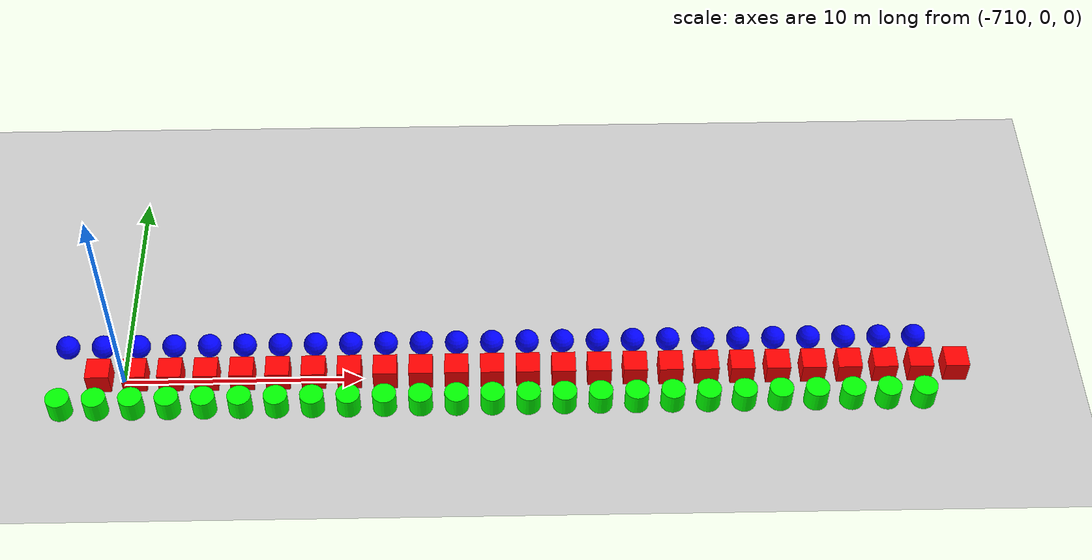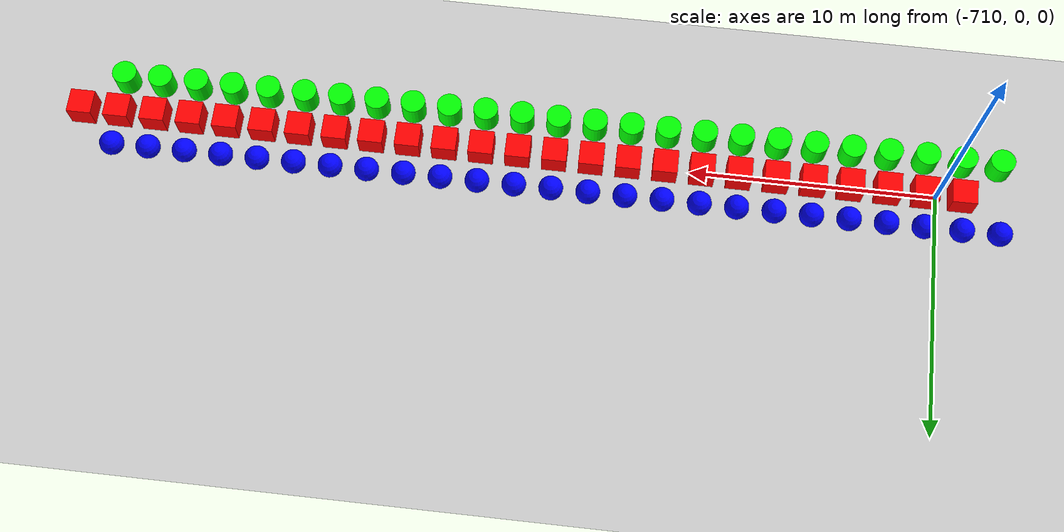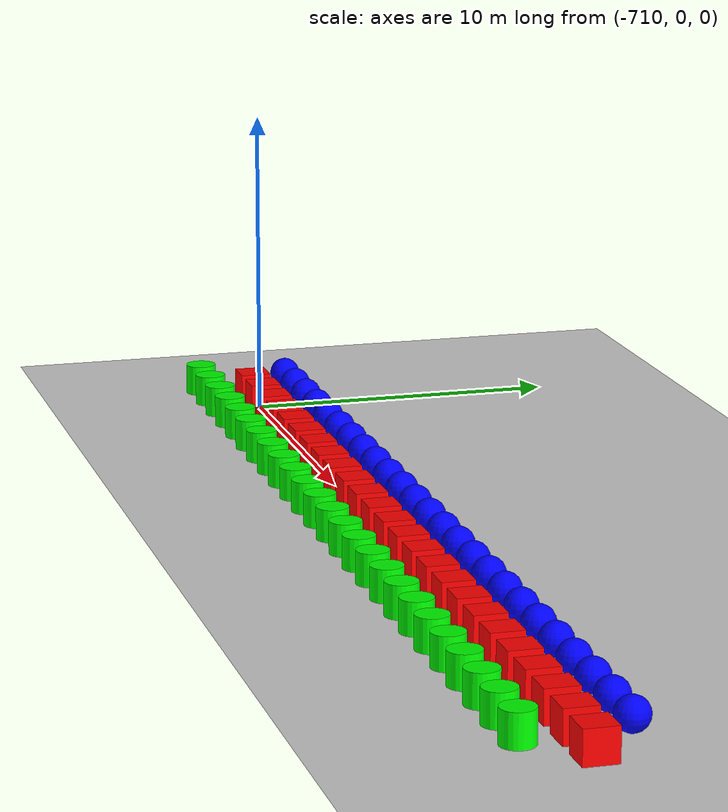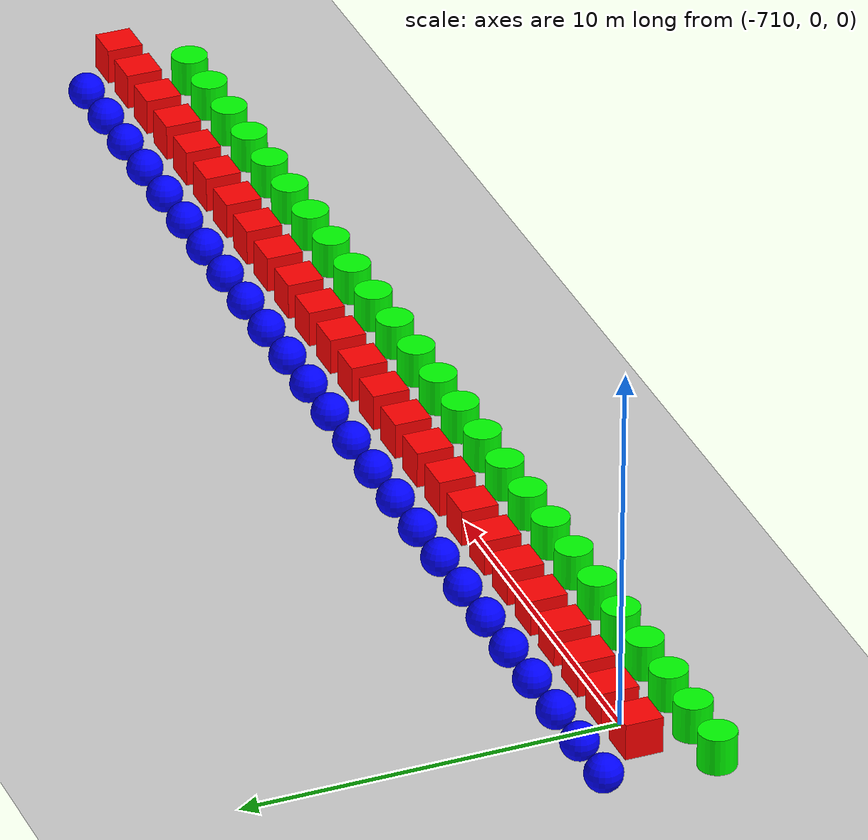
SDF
<sdf version="1.6">
 <world name="shapes">
  <model name="ground_plane">
   <static>true</static>
   <link name="link">
    <collision name="collision">
     <geometry><plane><normal>0 0 1</normal><size>100 100</size></plane></geometry>
    </collision>
    <visual name="visual">
     <geometry><plane><normal>0 0 1</normal><size>100 100</size></plane></geometry>
     <material>
      <ambient>0.8 0.8 0.8 1</ambient>
      <diffuse>0.8 0.8 0.8 1</diffuse>
      <specular>0.8 0.8 0.8 1</specular>
     </material>
    </visual>
   </link>
  </model>
  <model name="cylinder_25">
   <pose>-712.5 -1.5 0.5 0 0 0</pose>
   <link name="cylinder_link">
    <inertial>
     <inertia><ixx>2</ixx><ixy>0</ixy><ixz>0</ixz><iyy>2</iyy><iyz>0</iyz><izz>2</izz></inertia>
     <mass>2.0</mass>
    </inertial>
    <collision name="cylinder_collision">
     <geometry><cylinder><radius>0.5</radius><length>1.0</length></cylinder></geometry>
    </collision>
    <visual name="cylinder_visual">
     <geometry><cylinder><radius>0.5</radius><length>1.0</length></cylinder></geometry>
     <material><ambient>0 1 0 1</ambient><diffuse>0 1 0 1</diffuse><specular>0 1 0 1</specular></material>
    </visual>
   </link>
  </model>
  <model name="sphere_25">
   <pose>-712.5 1.5 0.5 0 0 0</pose>
   <link name="sphere_link">
    <inertial>
     <inertia><ixx>3</ixx><ixy>0</ixy><ixz>0</ixz><iyy>3</iyy><iyz>0</iyz><izz>3</izz></inertia>
     <mass>3.0</mass>
    </inertial>
    <collision name="sphere_collision"><geometry><sphere><radius>0.5</radius></sphere></geometry></collision>
    <visual name="sphere_visual">
     <geometry><sphere><radius>0.5</radius></sphere></geometry>
     <material><ambient>0 0 1 1</ambient><diffuse>0 0 1 1</diffuse><specular>0 0 1 1</specular></material>
    </visual>
   </link>
  </model>
  <model name="box_26">
   <pose>-711.0 0 0.5 0 0 0</pose>
   <link name="box_link">
    <inertial>
     <inertia><ixx>1</ixx><ixy>0</ixy><ixz>0</ixz><iyy>1</iyy><iyz>0</iyz><izz>1</izz></inertia>
     <mass>1.0</mass>
    </inertial>
    <collision name="box_collision"><geometry><box><size>1 1 1</size></box></geometry></collision>
    <visual name="box_visual">
     <geometry><box><size>1 1 1</size></box></geometry>
     <material><ambient>1 0 0 1</ambient><diffuse>1 0 0 1</diffuse><specular>1 0 0 1</specular></material>
    </visual>
   </link>
  </model>
  <model name="cylinder_26">
   <pose>-711.0 -1.5 0.5 0 0 0</pose>
   <link name="cylinder_link">
    <inertial>
     <inertia><ixx>2</ixx><ixy>0</ixy><ixz>0</ixz><iyy>2</iyy><iyz>0</iyz><izz>2</izz></inertia>
     <mass>2.0</mass>
    </inertial>
    <collision name="cylinder_collision">
     <geometry><cylinder><radius>0.5</radius><length>1.0</length></cylinder></geometry>
    </collision>
    <visual name="cylinder_visual">
     <geometry><cylinder><radius>0.5</radius><length>1.0</length></cylinder></geometry>
     <material><ambient>0 1 0 1</ambient><diffuse>0 1 0 1</diffuse><specular>0 1 0 1</specular></material>
    </visual>
   </link>
  </model>
  <model name="sphere_26">
   <pose>-711.0 1.5 0.5 0 0 0</pose>
   <link name="sphere_link">
    <inertial>
     <inertia><ixx>3</ixx><ixy>0</ixy><ixz>0</ixz><iyy>3</iyy><iyz>0</iyz><izz>3</izz></inertia>
     <mass>3.0</mass>
    </inertial>
    <collision name="sphere_collision"><geometry><sphere><radius>0.5</radius></sphere></geometry></collision>
    <visual name="sphere_visual">
     <geometry><sphere><radius>0.5</radius></sphere></geometry>
     <material><ambient>0 0 1 1</ambient><diffuse>0 0 1 1</diffuse><specular>0 0 1 1</specular></material>
    </visual>
   </link>
  </model>
  <model name="box_27">
   <pose>-709.5 0 0.5 0 0 0</pose>
   <link name="box_link">
    <inertial>
     <inertia><ixx>1</ixx><ixy>0</ixy><ixz>0</ixz><iyy>1</iyy><iyz>0</iyz><izz>1</izz></inertia>
     <mass>1.0</mass>
    </inertial>
    <collision name="box_collision"><geometry><box><size>1 1 1</size></box></geometry></collision>
    <visual name="box_visual">
     <geometry><box><size>1 1 1</size></box></geometry>
     <material><ambient>1 0 0 1</ambient><diffuse>1 0 0 1</diffuse><specular>1 0 0 1</specular></material>
    </visual>
   </link>
  </model>
  <model name="cylinder_27">
   <pose>-709.5 -1.5 0.5 0 0 0</pose>
   <link name="cylinder_link">
    <inertial>
     <inertia><ixx>2</ixx><ixy>0</ixy><ixz>0</ixz><iyy>2</iyy><iyz>0</iyz><izz>2</izz></inertia>
     <mass>2.0</mass>
    </inertial>
    <collision name="cylinder_collision">
     <geometry><cylinder><radius>0.5</radius><length>1.0</length></cylinder></geometry>
    </collision>
    <visual name="cylinder_visual">
     <geometry><cylinder><radius>0.5</radius><length>1.0</length></cylinder></geometry>
     <material><ambient>0 1 0 1</ambient><diffuse>0 1 0 1</diffuse><specular>0 1 0 1</specular></material>
    </visual>
   </link>
  </model>
  <model name="sphere_27">
   <pose>-709.5 1.5 0.5 0 0 0</pose>
   <link name="sphere_link">
    <inertial>
     <inertia><ixx>3</ixx><ixy>0</ixy><ixz>0</ixz><iyy>3</iyy><iyz>0</iyz><izz>3</izz></inertia>
     <mass>3.0</mass>
    </inertial>
    <collision name="sphere_collision"><geometry><sphere><radius>0.5</radius></sphere></geometry></collision>
    <visual name="sphere_visual">
     <geometry><sphere><radius>0.5</radius></sphere></geometry>
     <material><ambient>0 0 1 1</ambient><diffuse>0 0 1 1</diffuse><specular>0 0 1 1</specular></material>
    </visual>
   </link>
  </model>
  <model name="box_28">
   <pose>-708.0 0 0.5 0 0 0</pose>
   <link name="box_link">
    <inertial>
     <inertia><ixx>1</ixx><ixy>0</ixy><ixz>0</ixz><iyy>1</iyy><iyz>0</iyz><izz>1</izz></inertia>
     <mass>1.0</mass>
    </inertial>
    <collision name="box_collision"><geometry><box><size>1 1 1</size></box></geometry></collision>
    <visual name="box_visual">
     <geometry><box><size>1 1 1</size></box></geometry>
     <material><ambient>1 0 0 1</ambient><diffuse>1 0 0 1</diffuse><specular>1 0 0 1</specular></material>
    </visual>
   </link>
  </model>
  <model name="cylinder_28">
   <pose>-708.0 -1.5 0.5 0 0 0</pose>
   <link name="cylinder_link">
    <inertial>
     <inertia><ixx>2</ixx><ixy>0</ixy><ixz>0</ixz><iyy>2</iyy><iyz>0</iyz><izz>2</izz></inertia>
     <mass>2.0</mass>
    </inertial>
    <collision name="cylinder_collision">
     <geometry><cylinder><radius>0.5</radius><length>1.0</length></cylinder></geometry>
    </collision>
    <visual name="cylinder_visual">
     <geometry><cylinder><radius>0.5</radius><length>1.0</length></cylinder></geometry>
     <material><ambient>0 1 0 1</ambient><diffuse>0 1 0 1</diffuse><specular>0 1 0 1</specular></material>
    </visual>
   </link>
  </model>
  <model name="sphere_28">
   <pose>-708.0 1.5 0.5 0 0 0</pose>
   <link name="sphere_link">
    <inertial>
     <inertia><ixx>3</ixx><ixy>0</ixy><ixz>0</ixz><iyy>3</iyy><iyz>0</iyz><izz>3</izz></inertia>
     <mass>3.0</mass>
    </inertial>
    <collision name="sphere_collision"><geometry><sphere><radius>0.5</radius></sphere></geometry></collision>
    <visual name="sphere_visual">
     <geometry><sphere><radius>0.5</radius></sphere></geometry>
     <material><ambient>0 0 1 1</ambient><diffuse>0 0 1 1</diffuse><specular>0 0 1 1</specular></material>
    </visual>
   </link>
  </model>
  <model name="box_29">
   <pose>-706.5 0 0.5 0 0 0</pose>
   <link name="box_link">
    <inertial>
     <inertia><ixx>1</ixx><ixy>0</ixy><ixz>0</ixz><iyy>1</iyy><iyz>0</iyz><izz>1</izz></inertia>
     <mass>1.0</mass>
    </inertial>
    <collision name="box_collision"><geometry><box><size>1 1 1</size></box></geometry></collision>
    <visual name="box_visual">
     <geometry><box><size>1 1 1</size></box></geometry>
     <material><ambient>1 0 0 1</ambient><diffuse>1 0 0 1</diffuse><specular>1 0 0 1</specular></material>
    </visual>
   </link>
  </model>
  <model name="cylinder_29">
   <pose>-706.5 -1.5 0.5 0 0 0</pose>
   <link name="cylinder_link">
    <inertial>
     <inertia><ixx>2</ixx><ixy>0</ixy><ixz>0</ixz><iyy>2</iyy><iyz>0</iyz><izz>2</izz></inertia>
     <mass>2.0</mass>
    </inertial>
    <collision name="cylinder_collision">
     <geometry><cylinder><radius>0.5</radius><length>1.0</length></cylinder></geometry>
    </collision>
    <visual name="cylinder_visual">
     <geometry><cylinder><radius>0.5</radius><length>1.0</length></cylinder></geometry>
     <material><ambient>0 1 0 1</ambient><diffuse>0 1 0 1</diffuse><specular>0 1 0 1</specular></material>
    </visual>
   </link>
  </model>
  <model name="sphere_29">
   <pose>-706.5 1.5 0.5 0 0 0</pose>
   <link name="sphere_link">
    <inertial>
     <inertia><ixx>3</ixx><ixy>0</ixy><ixz>0</ixz><iyy>3</iyy><iyz>0</iyz><izz>3</izz></inertia>
     <mass>3.0</mass>
    </inertial>
    <collision name="sphere_collision"><geometry><sphere><radius>0.5</radius></sphere></geometry></collision>
    <visual name="sphere_visual">
     <geometry><sphere><radius>0.5</radius></sphere></geometry>
     <material><ambient>0 0 1 1</ambient><diffuse>0 0 1 1</diffuse><specular>0 0 1 1</specular></material>
    </visual>
   </link>
  </model>
  <model name="box_30">
   <pose>-705.0 0 0.5 0 0 0</pose>
   <link name="box_link">
    <inertial>
     <inertia><ixx>1</ixx><ixy>0</ixy><ixz>0</ixz><iyy>1</iyy><iyz>0</iyz><izz>1</izz></inertia>
     <mass>1.0</mass>
    </inertial>
    <collision name="box_collision"><geometry><box><size>1 1 1</size></box></geometry></collision>
    <visual name="box_visual">
     <geometry><box><size>1 1 1</size></box></geometry>
     <material><ambient>1 0 0 1</ambient><diffuse>1 0 0 1</diffuse><specular>1 0 0 1</specular></material>
    </visual>
   </link>
  </model>
  <model name="cylinder_30">
   <pose>-705.0 -1.5 0.5 0 0 0</pose>
   <link name="cylinder_link">
    <inertial>
     <inertia><ixx>2</ixx><ixy>0</ixy><ixz>0</ixz><iyy>2</iyy><iyz>0</iyz><izz>2</izz></inertia>
     <mass>2.0</mass>
    </inertial>
    <collision name="cylinder_collision">
     <geometry><cylinder><radius>0.5</radius><length>1.0</length></cylinder></geometry>
    </collision>
    <visual name="cylinder_visual">
     <geometry><cylinder><radius>0.5</radius><length>1.0</length></cylinder></geometry>
     <material><ambient>0 1 0 1</ambient><diffuse>0 1 0 1</diffuse><specular>0 1 0 1</specular></material>
    </visual>
   </link>
  </model>
  <model name="sphere_30">
   <pose>-705.0 1.5 0.5 0 0 0</pose>
   <link name="sphere_link">
    <inertial>
     <inertia><ixx>3</ixx><ixy>0</ixy><ixz>0</ixz><iyy>3</iyy><iyz>0</iyz><izz>3</izz></inertia>
     <mass>3.0</mass>
    </inertial>
    <collision name="sphere_collision"><geometry><sphere><radius>0.5</radius></sphere></geometry></collision>
    <visual name="sphere_visual">
     <geometry><sphere><radius>0.5</radius></sphere></geometry>
     <material><ambient>0 0 1 1</ambient><diffuse>0 0 1 1</diffuse><specular>0 0 1 1</specular></material>
    </visual>
   </link>
  </model>
  <model name="box_31">
   <pose>-703.5 0 0.5 0 0 0</pose>
   <link name="box_link">
    <inertial>
     <inertia><ixx>1</ixx><ixy>0</ixy><ixz>0</ixz><iyy>1</iyy><iyz>0</iyz><izz>1</izz></inertia>
     <mass>1.0</mass>
    </inertial>
    <collision name="box_collision"><geometry><box><size>1 1 1</size></box></geometry></collision>
    <visual name="box_visual">
     <geometry><box><size>1 1 1</size></box></geometry>
     <material><ambient>1 0 0 1</ambient><diffuse>1 0 0 1</diffuse><specular>1 0 0 1</specular></material>
    </visual>
   </link>
  </model>
  <model name="cylinder_31">
   <pose>-703.5 -1.5 0.5 0 0 0</pose>
   <link name="cylinder_link">
    <inertial>
     <inertia><ixx>2</ixx><ixy>0</ixy><ixz>0</ixz><iyy>2</iyy><iyz>0</iyz><izz>2</izz></inertia>
     <mass>2.0</mass>
    </inertial>
    <collision name="cylinder_collision">
     <geometry><cylinder><radius>0.5</radius><length>1.0</length></cylinder></geometry>
    </collision>
    <visual name="cylinder_visual">
     <geometry><cylinder><radius>0.5</radius><length>1.0</length></cylinder></geometry>
     <material><ambient>0 1 0 1</ambient><diffuse>0 1 0 1</diffuse><specular>0 1 0 1</specular></material>
    </visual>
   </link>
  </model>
  <model name="sphere_31">
   <pose>-703.5 1.5 0.5 0 0 0</pose>
   <link name="sphere_link">
    <inertial>
     <inertia><ixx>3</ixx><ixy>0</ixy><ixz>0</ixz><iyy>3</iyy><iyz>0</iyz><izz>3</izz></inertia>
     <mass>3.0</mass>
    </inertial>
    <collision name="sphere_collision"><geometry><sphere><radius>0.5</radius></sphere></geometry></collision>
    <visual name="sphere_visual">
     <geometry><sphere><radius>0.5</radius></sphere></geometry>
     <material><ambient>0 0 1 1</ambient><diffuse>0 0 1 1</diffuse><specular>0 0 1 1</specular></material>
    </visual>
   </link>
  </model>
  <model name="box_32">
   <pose>-702.0 0 0.5 0 0 0</pose>
   <link name="box_link">
    <inertial>
     <inertia><ixx>1</ixx><ixy>0</ixy><ixz>0</ixz><iyy>1</iyy><iyz>0</iyz><izz>1</izz></inertia>
     <mass>1.0</mass>
    </inertial>
    <collision name="box_collision"><geometry><box><size>1 1 1</size></box></geometry></collision>
    <visual name="box_visual">
     <geometry><box><size>1 1 1</size></box></geometry>
     <material><ambient>1 0 0 1</ambient><diffuse>1 0 0 1</diffuse><specular>1 0 0 1</specular></material>
    </visual>
   </link>
  </model>
  <model name="cylinder_32">
   <pose>-702.0 -1.5 0.5 0 0 0</pose>
   <link name="cylinder_link">
    <inertial>
     <inertia><ixx>2</ixx><ixy>0</ixy><ixz>0</ixz><iyy>2</iyy><iyz>0</iyz><izz>2</izz></inertia>
     <mass>2.0</mass>
    </inertial>
    <collision name="cylinder_collision">
     <geometry><cylinder><radius>0.5</radius><length>1.0</length></cylinder></geometry>
    </collision>
    <visual name="cylinder_visual">
     <geometry><cylinder><radius>0.5</radius><length>1.0</length></cylinder></geometry>
     <material><ambient>0 1 0 1</ambient><diffuse>0 1 0 1</diffuse><specular>0 1 0 1</specular></material>
    </visual>
   </link>
  </model>
  <model name="sphere_32">
   <pose>-702.0 1.5 0.5 0 0 0</pose>
   <link name="sphere_link">
    <inertial>
     <inertia><ixx>3</ixx><ixy>0</ixy><ixz>0</ixz><iyy>3</iyy><iyz>0</iyz><izz>3</izz></inertia>
     <mass>3.0</mass>
    </inertial>
    <collision name="sphere_collision"><geometry><sphere><radius>0.5</radius></sphere></geometry></collision>
    <visual name="sphere_visual">
     <geometry><sphere><radius>0.5</radius></sphere></geometry>
     <material><ambient>0 0 1 1</ambient><diffuse>0 0 1 1</diffuse><specular>0 0 1 1</specular></material>
    </visual>
   </link>
  </model>
  <model name="box_33">
   <pose>-700.5 0 0.5 0 0 0</pose>
   <link name="box_link">
    <inertial>
     <inertia><ixx>1</ixx><ixy>0</ixy><ixz>0</ixz><iyy>1</iyy><iyz>0</iyz><izz>1</izz></inertia>
     <mass>1.0</mass>
    </inertial>
    <collision name="box_collision"><geometry><box><size>1 1 1</size></box></geometry></collision>
    <visual name="box_visual">
     <geometry><box><size>1 1 1</size></box></geometry>
     <material><ambient>1 0 0 1</ambient><diffuse>1 0 0 1</diffuse><specular>1 0 0 1</specular></material>
    </visual>
   </link>
  </model>
  <model name="cylinder_33">
   <pose>-700.5 -1.5 0.5 0 0 0</pose>
   <link name="cylinder_link">
    <inertial>
     <inertia><ixx>2</ixx><ixy>0</ixy><ixz>0</ixz><iyy>2</iyy><iyz>0</iyz><izz>2</izz></inertia>
     <mass>2.0</mass>
    </inertial>
    <collision name="cylinder_collision">
     <geometry><cylinder><radius>0.5</radius><length>1.0</length></cylinder></geometry>
    </collision>
    <visual name="cylinder_visual">
     <geometry><cylinder><radius>0.5</radius><length>1.0</length></cylinder></geometry>
     <material><ambient>0 1 0 1</ambient><diffuse>0 1 0 1</diffuse><specular>0 1 0 1</specular></material>
    </visual>
   </link>
  </model>
  <model name="sphere_33">
   <pose>-700.5 1.5 0.5 0 0 0</pose>
   <link name="sphere_link">
    <inertial>
     <inertia><ixx>3</ixx><ixy>0</ixy><ixz>0</ixz><iyy>3</iyy><iyz>0</iyz><izz>3</izz></inertia>
     <mass>3.0</mass>
    </inertial>
    <collision name="sphere_collision"><geometry><sphere><radius>0.5</radius></sphere></geometry></collision>
    <visual name="sphere_visual">
     <geometry><sphere><radius>0.5</radius></sphere></geometry>
     <material><ambient>0 0 1 1</ambient><diffuse>0 0 1 1</diffuse><specular>0 0 1 1</specular></material>
    </visual>
   </link>
  </model>
  <model name="box_34">
   <pose>-699.0 0 0.5 0 0 0</pose>
   <link name="box_link">
    <inertial>
     <inertia><ixx>1</ixx><ixy>0</ixy><ixz>0</ixz><iyy>1</iyy><iyz>0</iyz><izz>1</izz></inertia>
     <mass>1.0</mass>
    </inertial>
    <collision name="box_collision"><geometry><box><size>1 1 1</size></box></geometry></collision>
    <visual name="box_visual">
     <geometry><box><size>1 1 1</size></box></geometry>
     <material><ambient>1 0 0 1</ambient><diffuse>1 0 0 1</diffuse><specular>1 0 0 1</specular></material>
    </visual>
   </link>
  </model>
  <model name="cylinder_34">
   <pose>-699.0 -1.5 0.5 0 0 0</pose>
   <link name="cylinder_link">
    <inertial>
     <inertia><ixx>2</ixx><ixy>0</ixy><ixz>0</ixz><iyy>2</iyy><iyz>0</iyz><izz>2</izz></inertia>
     <mass>2.0</mass>
    </inertial>
    <collision name="cylinder_collision">
     <geometry><cylinder><radius>0.5</radius><length>1.0</length></cylinder></geometry>
    </collision>
    <visual name="cylinder_visual">
     <geometry><cylinder><radius>0.5</radius><length>1.0</length></cylinder></geometry>
     <material><ambient>0 1 0 1</ambient><diffuse>0 1 0 1</diffuse><specular>0 1 0 1</specular></material>
    </visual>
   </link>
  </model>
  <model name="sphere_34">
   <pose>-699.0 1.5 0.5 0 0 0</pose>
   <link name="sphere_link">
    <inertial>
     <inertia><ixx>3</ixx><ixy>0</ixy><ixz>0</ixz><iyy>3</iyy><iyz>0</iyz><izz>3</izz></inertia>
     <mass>3.0</mass>
    </inertial>
    <collision name="sphere_collision"><geometry><sphere><radius>0.5</radius></sphere></geometry></collision>
    <visual name="sphere_visual">
     <geometry><sphere><radius>0.5</radius></sphere></geometry>
     <material><ambient>0 0 1 1</ambient><diffuse>0 0 1 1</diffuse><specular>0 0 1 1</specular></material>
    </visual>
   </link>
  </model>
  <model name="box_35">
   <pose>-697.5 0 0.5 0 0 0</pose>
   <link name="box_link">
    <inertial>
     <inertia><ixx>1</ixx><ixy>0</ixy><ixz>0</ixz><iyy>1</iyy><iyz>0</iyz><izz>1</izz></inertia>
     <mass>1.0</mass>
    </inertial>
    <collision name="box_collision"><geometry><box><size>1 1 1</size></box></geometry></collision>
    <visual name="box_visual">
     <geometry><box><size>1 1 1</size></box></geometry>
     <material><ambient>1 0 0 1</ambient><diffuse>1 0 0 1</diffuse><specular>1 0 0 1</specular></material>
    </visual>
   </link>
  </model>
  <model name="cylinder_35">
   <pose>-697.5 -1.5 0.5 0 0 0</pose>
   <link name="cylinder_link">
    <inertial>
     <inertia><ixx>2</ixx><ixy>0</ixy><ixz>0</ixz><iyy>2</iyy><iyz>0</iyz><izz>2</izz></inertia>
     <mass>2.0</mass>
    </inertial>
    <collision name="cylinder_collision">
     <geometry><cylinder><radius>0.5</radius><length>1.0</length></cylinder></geometry>
    </collision>
    <visual name="cylinder_visual">
     <geometry><cylinder><radius>0.5</radius><length>1.0</length></cylinder></geometry>
     <material><ambient>0 1 0 1</ambient><diffuse>0 1 0 1</diffuse><specular>0 1 0 1</specular></material>
    </visual>
   </link>
  </model>
  <model name="sphere_35">
   <pose>-697.5 1.5 0.5 0 0 0</pose>
   <link name="sphere_link">
    <inertial>
     <inertia><ixx>3</ixx><ixy>0</ixy><ixz>0</ixz><iyy>3</iyy><iyz>0</iyz><izz>3</izz></inertia>
     <mass>3.0</mass>
    </inertial>
    <collision name="sphere_collision"><geometry><sphere><radius>0.5</radius></sphere></geometry></collision>
    <visual name="sphere_visual">
     <geometry><sphere><radius>0.5</radius></sphere></geometry>
     <material><ambient>0 0 1 1</ambient><diffuse>0 0 1 1</diffuse><specular>0 0 1 1</specular></material>
    </visual>
   </link>
  </model>
  <model name="box_36">
   <pose>-696.0 0 0.5 0 0 0</pose>
   <link name="box_link">
    <inertial>
     <inertia><ixx>1</ixx><ixy>0</ixy><ixz>0</ixz><iyy>1</iyy><iyz>0</iyz><izz>1</izz></inertia>
     <mass>1.0</mass>
    </inertial>
    <collision name="box_collision"><geometry><box><size>1 1 1</size></box></geometry></collision>
    <visual name="box_visual">
     <geometry><box><size>1 1 1</size></box></geometry>
     <material><ambient>1 0 0 1</ambient><diffuse>1 0 0 1</diffuse><specular>1 0 0 1</specular></material>
    </visual>
   </link>
  </model>
  <model name="cylinder_36">
   <pose>-696.0 -1.5 0.5 0 0 0</pose>
   <link name="cylinder_link">
    <inertial>
     <inertia><ixx>2</ixx><ixy>0</ixy><ixz>0</ixz><iyy>2</iyy><iyz>0</iyz><izz>2</izz></inertia>
     <mass>2.0</mass>
    </inertial>
    <collision name="cylinder_collision">
     <geometry><cylinder><radius>0.5</radius><length>1.0</length></cylinder></geometry>
    </collision>
    <visual name="cylinder_visual">
     <geometry><cylinder><radius>0.5</radius><length>1.0</length></cylinder></geometry>
     <material><ambient>0 1 0 1</ambient><diffuse>0 1 0 1</diffuse><specular>0 1 0 1</specular></material>
    </visual>
   </link>
  </model>
  <model name="sphere_36">
   <pose>-696.0 1.5 0.5 0 0 0</pose>
   <link name="sphere_link">
    <inertial>
     <inertia><ixx>3</ixx><ixy>0</ixy><ixz>0</ixz><iyy>3</iyy><iyz>0</iyz><izz>3</izz></inertia>
     <mass>3.0</mass>
    </inertial>
    <collision name="sphere_collision"><geometry><sphere><radius>0.5</radius></sphere></geometry></collision>
    <visual name="sphere_visual">
     <geometry><sphere><radius>0.5</radius></sphere></geometry>
     <material><ambient>0 0 1 1</ambient><diffuse>0 0 1 1</diffuse><specular>0 0 1 1</specular></material>
    </visual>
   </link>
  </model>
  <model name="box_37">
   <pose>-694.5 0 0.5 0 0 0</pose>
   <link name="box_link">
    <inertial>
     <inertia><ixx>1</ixx><ixy>0</ixy><ixz>0</ixz><iyy>1</iyy><iyz>0</iyz><izz>1</izz></inertia>
     <mass>1.0</mass>
    </inertial>
    <collision name="box_collision"><geometry><box><size>1 1 1</size></box></geometry></collision>
    <visual name="box_visual">
     <geometry><box><size>1 1 1</size></box></geometry>
     <material><ambient>1 0 0 1</ambient><diffuse>1 0 0 1</diffuse><specular>1 0 0 1</specular></material>
    </visual>
   </link>
  </model>
  <model name="cylinder_37">
   <pose>-694.5 -1.5 0.5 0 0 0</pose>
   <link name="cylinder_link">
    <inertial>
     <inertia><ixx>2</ixx><ixy>0</ixy><ixz>0</ixz><iyy>2</iyy><iyz>0</iyz><izz>2</izz></inertia>
     <mass>2.0</mass>
    </inertial>
    <collision name="cylinder_collision">
     <geometry><cylinder><radius>0.5</radius><length>1.0</length></cylinder></geometry>
    </collision>
    <visual name="cylinder_visual">
     <geometry><cylinder><radius>0.5</radius><length>1.0</length></cylinder></geometry>
     <material><ambient>0 1 0 1</ambient><diffuse>0 1 0 1</diffuse><specular>0 1 0 1</specular></material>
    </visual>
   </link>
  </model>
  <model name="sphere_37">
   <pose>-694.5 1.5 0.5 0 0 0</pose>
   <link name="sphere_link">
    <inertial>
     <inertia><ixx>3</ixx><ixy>0</ixy><ixz>0</ixz><iyy>3</iyy><iyz>0</iyz><izz>3</izz></inertia>
     <mass>3.0</mass>
    </inertial>
    <collision name="sphere_collision"><geometry><sphere><radius>0.5</radius></sphere></geometry></collision>
    <visual name="sphere_visual">
     <geometry><sphere><radius>0.5</radius></sphere></geometry>
     <material><ambient>0 0 1 1</ambient><diffuse>0 0 1 1</diffuse><specular>0 0 1 1</specular></material>
    </visual>
   </link>
  </model>
  <model name="box_38">
   <pose>-693.0 0 0.5 0 0 0</pose>
   <link name="box_link">
    <inertial>
     <inertia><ixx>1</ixx><ixy>0</ixy><ixz>0</ixz><iyy>1</iyy><iyz>0</iyz><izz>1</izz></inertia>
     <mass>1.0</mass>
    </inertial>
    <collision name="box_collision"><geometry><box><size>1 1 1</size></box></geometry></collision>
    <visual name="box_visual">
     <geometry><box><size>1 1 1</size></box></geometry>
     <material><ambient>1 0 0 1</ambient><diffuse>1 0 0 1</diffuse><specular>1 0 0 1</specular></material>
    </visual>
   </link>
  </model>
  <model name="cylinder_38">
   <pose>-693.0 -1.5 0.5 0 0 0</pose>
   <link name="cylinder_link">
    <inertial>
     <inertia><ixx>2</ixx><ixy>0</ixy><ixz>0</ixz><iyy>2</iyy><iyz>0</iyz><izz>2</izz></inertia>
     <mass>2.0</mass>
    </inertial>
    <collision name="cylinder_collision">
     <geometry><cylinder><radius>0.5</radius><length>1.0</length></cylinder></geometry>
    </collision>
    <visual name="cylinder_visual">
     <geometry><cylinder><radius>0.5</radius><length>1.0</length></cylinder></geometry>
     <material><ambient>0 1 0 1</ambient><diffuse>0 1 0 1</diffuse><specular>0 1 0 1</specular></material>
    </visual>
   </link>
  </model>
  <model name="sphere_38">
   <pose>-693.0 1.5 0.5 0 0 0</pose>
   <link name="sphere_link">
    <inertial>
     <inertia><ixx>3</ixx><ixy>0</ixy><ixz>0</ixz><iyy>3</iyy><iyz>0</iyz><izz>3</izz></inertia>
     <mass>3.0</mass>
    </inertial>
    <collision name="sphere_collision"><geometry><sphere><radius>0.5</radius></sphere></geometry></collision>
    <visual name="sphere_visual">
     <geometry><sphere><radius>0.5</radius></sphere></geometry>
     <material><ambient>0 0 1 1</ambient><diffuse>0 0 1 1</diffuse><specular>0 0 1 1</specular></material>
    </visual>
   </link>
  </model>
  <model name="box_39">
   <pose>-691.5 0 0.5 0 0 0</pose>
   <link name="box_link">
    <inertial>
     <inertia><ixx>1</ixx><ixy>0</ixy><ixz>0</ixz><iyy>1</iyy><iyz>0</iyz><izz>1</izz></inertia>
     <mass>1.0</mass>
    </inertial>
    <collision name="box_collision"><geometry><box><size>1 1 1</size></box></geometry></collision>
    <visual name="box_visual">
     <geometry><box><size>1 1 1</size></box></geometry>
     <material><ambient>1 0 0 1</ambient><diffuse>1 0 0 1</diffuse><specular>1 0 0 1</specular></material>
    </visual>
   </link>
  </model>
  <model name="cylinder_39">
   <pose>-691.5 -1.5 0.5 0 0 0</pose>
   <link name="cylinder_link">
    <inertial>
     <inertia><ixx>2</ixx><ixy>0</ixy><ixz>0</ixz><iyy>2</iyy><iyz>0</iyz><izz>2</izz></inertia>
     <mass>2.0</mass>
    </inertial>
    <collision name="cylinder_collision">
     <geometry><cylinder><radius>0.5</radius><length>1.0</length></cylinder></geometry>
    </collision>
    <visual name="cylinder_visual">
     <geometry><cylinder><radius>0.5</radius><length>1.0</length></cylinder></geometry>
     <material><ambient>0 1 0 1</ambient><diffuse>0 1 0 1</diffuse><specular>0 1 0 1</specular></material>
    </visual>
   </link>
  </model>
  <model name="sphere_39">
   <pose>-691.5 1.5 0.5 0 0 0</pose>
   <link name="sphere_link">
    <inertial>
     <inertia><ixx>3</ixx><ixy>0</ixy><ixz>0</ixz><iyy>3</iyy><iyz>0</iyz><izz>3</izz></inertia>
     <mass>3.0</mass>
    </inertial>
    <collision name="sphere_collision"><geometry><sphere><radius>0.5</radius></sphere></geometry></collision>
    <visual name="sphere_visual">
     <geometry><sphere><radius>0.5</radius></sphere></geometry>
     <material><ambient>0 0 1 1</ambient><diffuse>0 0 1 1</diffuse><specular>0 0 1 1</specular></material>
    </visual>
   </link>
  </model>
  <model name="box_40">
   <pose>-690.0 0 0.5 0 0 0</pose>
   <link name="box_link">
    <inertial>
     <inertia><ixx>1</ixx><ixy>0</ixy><ixz>0</ixz><iyy>1</iyy><iyz>0</iyz><izz>1</izz></inertia>
     <mass>1.0</mass>
    </inertial>
    <collision name="box_collision"><geometry><box><size>1 1 1</size></box></geometry></collision>
    <visual name="box_visual">
     <geometry><box><size>1 1 1</size></box></geometry>
     <material><ambient>1 0 0 1</ambient><diffuse>1 0 0 1</diffuse><specular>1 0 0 1</specular></material>
    </visual>
   </link>
  </model>
  <model name="cylinder_40">
   <pose>-690.0 -1.5 0.5 0 0 0</pose>
   <link name="cylinder_link">
    <inertial>
     <inertia><ixx>2</ixx><ixy>0</ixy><ixz>0</ixz><iyy>2</iyy><iyz>0</iyz><izz>2</izz></inertia>
     <mass>2.0</mass>
    </inertial>
    <collision name="cylinder_collision">
     <geometry><cylinder><radius>0.5</radius><length>1.0</length></cylinder></geometry>
    </collision>
    <visual name="cylinder_visual">
     <geometry><cylinder><radius>0.5</radius><length>1.0</length></cylinder></geometry>
     <material><ambient>0 1 0 1</ambient><diffuse>0 1 0 1</diffuse><specular>0 1 0 1</specular></material>
    </visual>
   </link>
  </model>
  <model name="sphere_40">
   <pose>-690.0 1.5 0.5 0 0 0</pose>
   <link name="sphere_link">
    <inertial>
     <inertia><ixx>3</ixx><ixy>0</ixy><ixz>0</ixz><iyy>3</iyy><iyz>0</iyz><izz>3</izz></inertia>
     <mass>3.0</mass>
    </inertial>
    <collision name="sphere_collision"><geometry><sphere><radius>0.5</radius></sphere></geometry></collision>
    <visual name="sphere_visual">
     <geometry><sphere><radius>0.5</radius></sphere></geometry>
     <material><ambient>0 0 1 1</ambient><diffuse>0 0 1 1</diffuse><specular>0 0 1 1</specular></material>
    </visual>
   </link>
  </model>
  <model name="box_41">
   <pose>-688.5 0 0.5 0 0 0</pose>
   <link name="box_link">
    <inertial>
     <inertia><ixx>1</ixx><ixy>0</ixy><ixz>0</ixz><iyy>1</iyy><iyz>0</iyz><izz>1</izz></inertia>
     <mass>1.0</mass>
    </inertial>
    <collision name="box_collision"><geometry><box><size>1 1 1</size></box></geometry></collision>
    <visual name="box_visual">
     <geometry><box><size>1 1 1</size></box></geometry>
     <material><ambient>1 0 0 1</ambient><diffuse>1 0 0 1</diffuse><specular>1 0 0 1</specular></material>
    </visual>
   </link>
  </model>
  <model name="cylinder_41">
   <pose>-688.5 -1.5 0.5 0 0 0</pose>
   <link name="cylinder_link">
    <inertial>
     <inertia><ixx>2</ixx><ixy>0</ixy><ixz>0</ixz><iyy>2</iyy><iyz>0</iyz><izz>2</izz></inertia>
     <mass>2.0</mass>
    </inertial>
    <collision name="cylinder_collision">
     <geometry><cylinder><radius>0.5</radius><length>1.0</length></cylinder></geometry>
    </collision>
    <visual name="cylinder_visual">
     <geometry><cylinder><radius>0.5</radius><length>1.0</length></cylinder></geometry>
     <material><ambient>0 1 0 1</ambient><diffuse>0 1 0 1</diffuse><specular>0 1 0 1</specular></material>
    </visual>
   </link>
  </model>
  <model name="sphere_41">
   <pose>-688.5 1.5 0.5 0 0 0</pose>
   <link name="sphere_link">
    <inertial>
     <inertia><ixx>3</ixx><ixy>0</ixy><ixz>0</ixz><iyy>3</iyy><iyz>0</iyz><izz>3</izz></inertia>
     <mass>3.0</mass>
    </inertial>
    <collision name="sphere_collision"><geometry><sphere><radius>0.5</radius></sphere></geometry></collision>
    <visual name="sphere_visual">
     <geometry><sphere><radius>0.5</radius></sphere></geometry>
     <material><ambient>0 0 1 1</ambient><diffuse>0 0 1 1</diffuse><specular>0 0 1 1</specular></material>
    </visual>
   </link>
  </model>
  <model name="box_42">
   <pose>-687.0 0 0.5 0 0 0</pose>
   <link name="box_link">
    <inertial>
     <inertia><ixx>1</ixx><ixy>0</ixy><ixz>0</ixz><iyy>1</iyy><iyz>0</iyz><izz>1</izz></inertia>
     <mass>1.0</mass>
    </inertial>
    <collision name="box_collision"><geometry><box><size>1 1 1</size></box></geometry></collision>
    <visual name="box_visual">
     <geometry><box><size>1 1 1</size></box></geometry>
     <material><ambient>1 0 0 1</ambient><diffuse>1 0 0 1</diffuse><specular>1 0 0 1</specular></material>
    </visual>
   </link>
  </model>
  <model name="cylinder_42">
   <pose>-687.0 -1.5 0.5 0 0 0</pose>
   <link name="cylinder_link">
    <inertial>
     <inertia><ixx>2</ixx><ixy>0</ixy><ixz>0</ixz><iyy>2</iyy><iyz>0</iyz><izz>2</izz></inertia>
     <mass>2.0</mass>
    </inertial>
    <collision name="cylinder_collision">
     <geometry><cylinder><radius>0.5</radius><length>1.0</length></cylinder></geometry>
    </collision>
    <visual name="cylinder_visual">
     <geometry><cylinder><radius>0.5</radius><length>1.0</length></cylinder></geometry>
     <material><ambient>0 1 0 1</ambient><diffuse>0 1 0 1</diffuse><specular>0 1 0 1</specular></material>
    </visual>
   </link>
  </model>
  <model name="sphere_42">
   <pose>-687.0 1.5 0.5 0 0 0</pose>
   <link name="sphere_link">
    <inertial>
     <inertia><ixx>3</ixx><ixy>0</ixy><ixz>0</ixz><iyy>3</iyy><iyz>0</iyz><izz>3</izz></inertia>
     <mass>3.0</mass>
    </inertial>
    <collision name="sphere_collision"><geometry><sphere><radius>0.5</radius></sphere></geometry></collision>
    <visual name="sphere_visual">
     <geometry><sphere><radius>0.5</radius></sphere></geometry>
     <material><ambient>0 0 1 1</ambient><diffuse>0 0 1 1</diffuse><specular>0 0 1 1</specular></material>
    </visual>
   </link>
  </model>
  <model name="box_43">
   <pose>-685.5 0 0.5 0 0 0</pose>
   <link name="box_link">
    <inertial>
     <inertia><ixx>1</ixx><ixy>0</ixy><ixz>0</ixz><iyy>1</iyy><iyz>0</iyz><izz>1</izz></inertia>
     <mass>1.0</mass>
    </inertial>
    <collision name="box_collision"><geometry><box><size>1 1 1</size></box></geometry></collision>
    <visual name="box_visual">
     <geometry><box><size>1 1 1</size></box></geometry>
     <material><ambient>1 0 0 1</ambient><diffuse>1 0 0 1</diffuse><specular>1 0 0 1</specular></material>
    </visual>
   </link>
  </model>
  <model name="cylinder_43">
   <pose>-685.5 -1.5 0.5 0 0 0</pose>
   <link name="cylinder_link">
    <inertial>
     <inertia><ixx>2</ixx><ixy>0</ixy><ixz>0</ixz><iyy>2</iyy><iyz>0</iyz><izz>2</izz></inertia>
     <mass>2.0</mass>
    </inertial>
    <collision name="cylinder_collision">
     <geometry><cylinder><radius>0.5</radius><length>1.0</length></cylinder></geometry>
    </collision>
    <visual name="cylinder_visual">
     <geometry><cylinder><radius>0.5</radius><length>1.0</length></cylinder></geometry>
     <material><ambient>0 1 0 1</ambient><diffuse>0 1 0 1</diffuse><specular>0 1 0 1</specular></material>
    </visual>
   </link>
  </model>
  <model name="sphere_43">
   <pose>-685.5 1.5 0.5 0 0 0</pose>
   <link name="sphere_link">
    <inertial>
     <inertia><ixx>3</ixx><ixy>0</ixy><ixz>0</ixz><iyy>3</iyy><iyz>0</iyz><izz>3</izz></inertia>
     <mass>3.0</mass>
    </inertial>
    <collision name="sphere_collision"><geometry><sphere><radius>0.5</radius></sphere></geometry></collision>
    <visual name="sphere_visual">
     <geometry><sphere><radius>0.5</radius></sphere></geometry>
     <material><ambient>0 0 1 1</ambient><diffuse>0 0 1 1</diffuse><specular>0 0 1 1</specular></material>
    </visual>
   </link>
  </model>
  <model name="box_44">
   <pose>-684.0 0 0.5 0 0 0</pose>
   <link name="box_link">
    <inertial>
     <inertia><ixx>1</ixx><ixy>0</ixy><ixz>0</ixz><iyy>1</iyy><iyz>0</iyz><izz>1</izz></inertia>
     <mass>1.0</mass>
    </inertial>
    <collision name="box_collision"><geometry><box><size>1 1 1</size></box></geometry></collision>
    <visual name="box_visual">
     <geometry><box><size>1 1 1</size></box></geometry>
     <material><ambient>1 0 0 1</ambient><diffuse>1 0 0 1</diffuse><specular>1 0 0 1</specular></material>
    </visual>
   </link>
  </model>
  <model name="cylinder_44">
   <pose>-684.0 -1.5 0.5 0 0 0</pose>
   <link name="cylinder_link">
    <inertial>
     <inertia><ixx>2</ixx><ixy>0</ixy><ixz>0</ixz><iyy>2</iyy><iyz>0</iyz><izz>2</izz></inertia>
     <mass>2.0</mass>
    </inertial>
    <collision name="cylinder_collision">
     <geometry><cylinder><radius>0.5</radius><length>1.0</length></cylinder></geometry>
    </collision>
    <visual name="cylinder_visual">
     <geometry><cylinder><radius>0.5</radius><length>1.0</length></cylinder></geometry>
     <material><ambient>0 1 0 1</ambient><diffuse>0 1 0 1</diffuse><specular>0 1 0 1</specular></material>
    </visual>
   </link>
  </model>
  <model name="sphere_44">
   <pose>-684.0 1.5 0.5 0 0 0</pose>
   <link name="sphere_link">
    <inertial>
     <inertia><ixx>3</ixx><ixy>0</ixy><ixz>0</ixz><iyy>3</iyy><iyz>0</iyz><izz>3</izz></inertia>
     <mass>3.0</mass>
    </inertial>
    <collision name="sphere_collision"><geometry><sphere><radius>0.5</radius></sphere></geometry></collision>
    <visual name="sphere_visual">
     <geometry><sphere><radius>0.5</radius></sphere></geometry>
     <material><ambient>0 0 1 1</ambient><diffuse>0 0 1 1</diffuse><specular>0 0 1 1</specular></material>
    </visual>
   </link>
  </model>
  <model name="box_45">
   <pose>-682.5 0 0.5 0 0 0</pose>
   <link name="box_link">
    <inertial>
     <inertia><ixx>1</ixx><ixy>0</ixy><ixz>0</ixz><iyy>1</iyy><iyz>0</iyz><izz>1</izz></inertia>
     <mass>1.0</mass>
    </inertial>
    <collision name="box_collision"><geometry><box><size>1 1 1</size></box></geometry></collision>
    <visual name="box_visual">
     <geometry><box><size>1 1 1</size></box></geometry>
     <material><ambient>1 0 0 1</ambient><diffuse>1 0 0 1</diffuse><specular>1 0 0 1</specular></material>
    </visual>
   </link>
  </model>
  <model name="cylinder_45">
   <pose>-682.5 -1.5 0.5 0 0 0</pose>
   <link name="cylinder_link">
    <inertial>
     <inertia><ixx>2</ixx><ixy>0</ixy><ixz>0</ixz><iyy>2</iyy><iyz>0</iyz><izz>2</izz></inertia>
     <mass>2.0</mass>
    </inertial>
    <collision name="cylinder_collision">
     <geometry><cylinder><radius>0.5</radius><length>1.0</length></cylinder></geometry>
    </collision>
    <visual name="cylinder_visual">
     <geometry><cylinder><radius>0.5</radius><length>1.0</length></cylinder></geometry>
     <material><ambient>0 1 0 1</ambient><diffuse>0 1 0 1</diffuse><specular>0 1 0 1</specular></material>
    </visual>
   </link>
  </model>
  <model name="sphere_45">
   <pose>-682.5 1.5 0.5 0 0 0</pose>
   <link name="sphere_link">
    <inertial>
     <inertia><ixx>3</ixx><ixy>0</ixy><ixz>0</ixz><iyy>3</iyy><iyz>0</iyz><izz>3</izz></inertia>
     <mass>3.0</mass>
    </inertial>
    <collision name="sphere_collision"><geometry><sphere><radius>0.5</radius></sphere></geometry></collision>
    <visual name="sphere_visual">
     <geometry><sphere><radius>0.5</radius></sphere></geometry>
     <material><ambient>0 0 1 1</ambient><diffuse>0 0 1 1</diffuse><specular>0 0 1 1</specular></material>
    </visual>
   </link>
  </model>
  <model name="box_46">
   <pose>-681.0 0 0.5 0 0 0</pose>
   <link name="box_link">
    <inertial>
     <inertia><ixx>1</ixx><ixy>0</ixy><ixz>0</ixz><iyy>1</iyy><iyz>0</iyz><izz>1</izz></inertia>
     <mass>1.0</mass>
    </inertial>
    <collision name="box_collision"><geometry><box><size>1 1 1</size></box></geometry></collision>
    <visual name="box_visual">
     <geometry><box><size>1 1 1</size></box></geometry>
     <material><ambient>1 0 0 1</ambient><diffuse>1 0 0 1</diffuse><specular>1 0 0 1</specular></material>
    </visual>
   </link>
  </model>
  <model name="cylinder_46">
   <pose>-681.0 -1.5 0.5 0 0 0</pose>
   <link name="cylinder_link">
    <inertial>
     <inertia><ixx>2</ixx><ixy>0</ixy><ixz>0</ixz><iyy>2</iyy><iyz>0</iyz><izz>2</izz></inertia>
     <mass>2.0</mass>
    </inertial>
    <collision name="cylinder_collision">
     <geometry><cylinder><radius>0.5</radius><length>1.0</length></cylinder></geometry>
    </collision>
    <visual name="cylinder_visual">
     <geometry><cylinder><radius>0.5</radius><length>1.0</length></cylinder></geometry>
     <material><ambient>0 1 0 1</ambient><diffuse>0 1 0 1</diffuse><specular>0 1 0 1</specular></material>
    </visual>
   </link>
  </model>
  <model name="sphere_46">
   <pose>-681.0 1.5 0.5 0 0 0</pose>
   <link name="sphere_link">
    <inertial>
     <inertia><ixx>3</ixx><ixy>0</ixy><ixz>0</ixz><iyy>3</iyy><iyz>0</iyz><izz>3</izz></inertia>
     <mass>3.0</mass>
    </inertial>
    <collision name="sphere_collision"><geometry><sphere><radius>0.5</radius></sphere></geometry></collision>
    <visual name="sphere_visual">
     <geometry><sphere><radius>0.5</radius></sphere></geometry>
     <material><ambient>0 0 1 1</ambient><diffuse>0 0 1 1</diffuse><specular>0 0 1 1</specular></material>
    </visual>
   </link>
  </model>
  <model name="box_47">
   <pose>-679.5 0 0.5 0 0 0</pose>
   <link name="box_link">
    <inertial>
     <inertia><ixx>1</ixx><ixy>0</ixy><ixz>0</ixz><iyy>1</iyy><iyz>0</iyz><izz>1</izz></inertia>
     <mass>1.0</mass>
    </inertial>
    <collision name="box_collision"><geometry><box><size>1 1 1</size></box></geometry></collision>
    <visual name="box_visual">
     <geometry><box><size>1 1 1</size></box></geometry>
     <material><ambient>1 0 0 1</ambient><diffuse>1 0 0 1</diffuse><specular>1 0 0 1</specular></material>
    </visual>
   </link>
  </model>
  <model name="cylinder_47">
   <pose>-679.5 -1.5 0.5 0 0 0</pose>
   <link name="cylinder_link">
    <inertial>
     <inertia><ixx>2</ixx><ixy>0</ixy><ixz>0</ixz><iyy>2</iyy><iyz>0</iyz><izz>2</izz></inertia>
     <mass>2.0</mass>
    </inertial>
    <collision name="cylinder_collision">
     <geometry><cylinder><radius>0.5</radius><length>1.0</length></cylinder></geometry>
    </collision>
    <visual name="cylinder_visual">
     <geometry><cylinder><radius>0.5</radius><length>1.0</length></cylinder></geometry>
     <material><ambient>0 1 0 1</ambient><diffuse>0 1 0 1</diffuse><specular>0 1 0 1</specular></material>
    </visual>
   </link>
  </model>
  <model name="sphere_47">
   <pose>-679.5 1.5 0.5 0 0 0</pose>
   <link name="sphere_link">
    <inertial>
     <inertia><ixx>3</ixx><ixy>0</ixy><ixz>0</ixz><iyy>3</iyy><iyz>0</iyz><izz>3</izz></inertia>
     <mass>3.0</mass>
    </inertial>
    <collision name="sphere_collision"><geometry><sphere><radius>0.5</radius></sphere></geometry></collision>
    <visual name="sphere_visual">
     <geometry><sphere><radius>0.5</radius></sphere></geometry>
     <material><ambient>0 0 1 1</ambient><diffuse>0 0 1 1</diffuse><specular>0 0 1 1</specular></material>
    </visual>
   </link>
  </model>
  <model name="box_48">
   <pose>-678.0 0 0.5 0 0 0</pose>
   <link name="box_link">
    <inertial>
     <inertia><ixx>1</ixx><ixy>0</ixy><ixz>0</ixz><iyy>1</iyy><iyz>0</iyz><izz>1</izz></inertia>
     <mass>1.0</mass>
    </inertial>
    <collision name="box_collision"><geometry><box><size>1 1 1</size></box></geometry></collision>
    <visual name="box_visual">
     <geometry><box><size>1 1 1</size></box></geometry>
     <material><ambient>1 0 0 1</ambient><diffuse>1 0 0 1</diffuse><specular>1 0 0 1</specular></material>
    </visual>
   </link>
  </model>
  <model name="cylinder_48">
   <pose>-678.0 -1.5 0.5 0 0 0</pose>
   <link name="cylinder_link">
    <inertial>
     <inertia><ixx>2</ixx><ixy>0</ixy><ixz>0</ixz><iyy>2</iyy><iyz>0</iyz><izz>2</izz></inertia>
     <mass>2.0</mass>
    </inertial>
    <collision name="cylinder_collision">
     <geometry><cylinder><radius>0.5</radius><length>1.0</length></cylinder></geometry>
    </collision>
    <visual name="cylinder_visual">
     <geometry><cylinder><radius>0.5</radius><length>1.0</length></cylinder></geometry>
     <material><ambient>0 1 0 1</ambient><diffuse>0 1 0 1</diffuse><specular>0 1 0 1</specular></material>
    </visual>
   </link>
  </model>
  <model name="sphere_48">
   <pose>-678.0 1.5 0.5 0 0 0</pose>
   <link name="sphere_link">
    <inertial>
     <inertia><ixx>3</ixx><ixy>0</ixy><ixz>0</ixz><iyy>3</iyy><iyz>0</iyz><izz>3</izz></inertia>
     <mass>3.0</mass>
    </inertial>
    <collision name="sphere_collision"><geometry><sphere><radius>0.5</radius></sphere></geometry></collision>
    <visual name="sphere_visual">
     <geometry><sphere><radius>0.5</radius></sphere></geometry>
     <material><ambient>0 0 1 1</ambient><diffuse>0 0 1 1</diffuse><specular>0 0 1 1</specular></material>
    </visual>
   </link>
  </model>
  <model name="box_49">
   <pose>-676.5 0 0.5 0 0 0</pose>
   <link name="box_link">
    <inertial>
     <inertia><ixx>1</ixx><ixy>0</ixy><ixz>0</ixz><iyy>1</iyy><iyz>0</iyz><izz>1</izz></inertia>
     <mass>1.0</mass>
    </inertial>
    <collision name="box_collision"><geometry><box><size>1 1 1</size></box></geometry></collision>
    <visual name="box_visual">
     <geometry><box><size>1 1 1</size></box></geometry>
     <material><ambient>1 0 0 1</ambient><diffuse>1 0 0 1</diffuse><specular>1 0 0 1</specular></material>
    </visual>
   </link>
  </model>
  <model name="cylinder_49">
   <pose>-676.5 -1.5 0.5 0 0 0</pose>
   <link name="cylinder_link">
    <inertial>
     <inertia><ixx>2</ixx><ixy>0</ixy><ixz>0</ixz><iyy>2</iyy><iyz>0</iyz><izz>2</izz></inertia>
     <mass>2.0</mass>
    </inertial>
    <collision name="cylinder_collision">
     <geometry><cylinder><radius>0.5</radius><length>1.0</length></cylinder></geometry>
    </collision>
    <visual name="cylinder_visual">
     <geometry><cylinder><radius>0.5</radius><length>1.0</length></cylinder></geometry>
     <material><ambient>0 1 0 1</ambient><diffuse>0 1 0 1</diffuse><specular>0 1 0 1</specular></material>
    </visual>
   </link>
  </model>
  <model name="sphere_49">
   <pose>-676.5 1.5 0.5 0 0 0</pose>
   <link name="sphere_link">
    <inertial>
     <inertia><ixx>3</ixx><ixy>0</ixy><ixz>0</ixz><iyy>3</iyy><iyz>0</iyz><izz>3</izz></inertia>
     <mass>3.0</mass>
    </inertial>
    <collision name="sphere_collision"><geometry><sphere><radius>0.5</radius></sphere></geometry></collision>
    <visual name="sphere_visual">
     <geometry><sphere><radius>0.5</radius></sphere></geometry>
     <material><ambient>0 0 1 1</ambient><diffuse>0 0 1 1</diffuse><specular>0 0 1 1</specular></material>
    </visual>
   </link>
  </model>
  <model name="box_50">
   <pose>-675.0 0 0.5 0 0 0</pose>
   <link name="box_link">
    <inertial>
     <inertia><ixx>1</ixx><ixy>0</ixy><ixz>0</ixz><iyy>1</iyy><iyz>0</iyz><izz>1</izz></inertia>
     <mass>1.0</mass>
    </inertial>
    <collision name="box_collision"><geometry><box><size>1 1 1</size></box></geometry></collision>
    <visual name="box_visual">
     <geometry><box><size>1 1 1</size></box></geometry>
     <material><ambient>1 0 0 1</ambient><diffuse>1 0 0 1</diffuse><specular>1 0 0 1</specular></material>
    </visual>
   </link>
  </model>
 </world>
</sdf>
